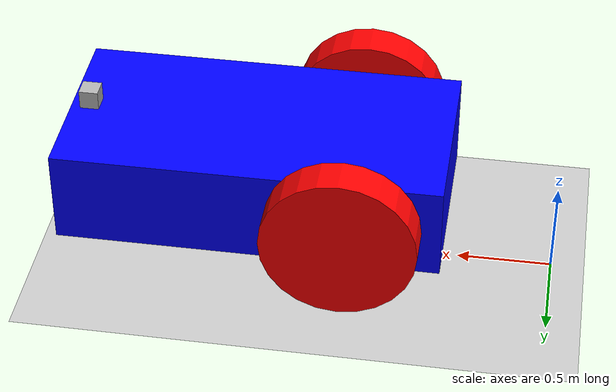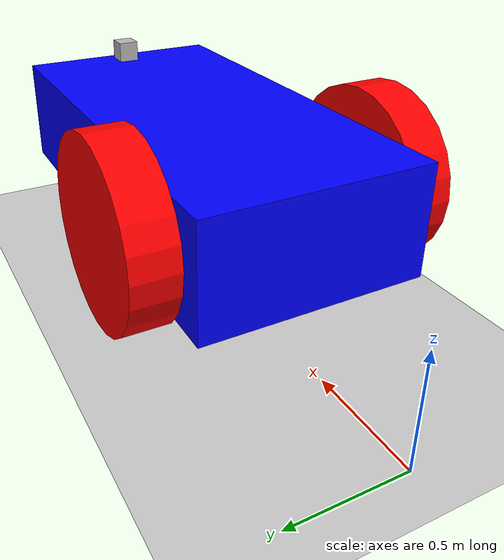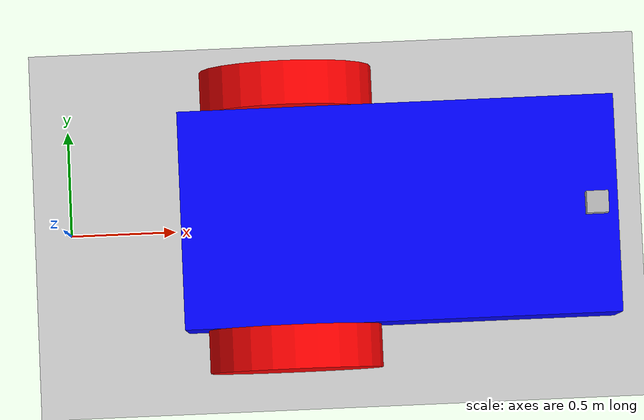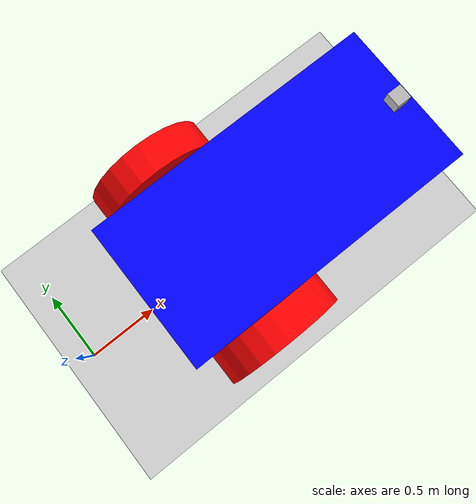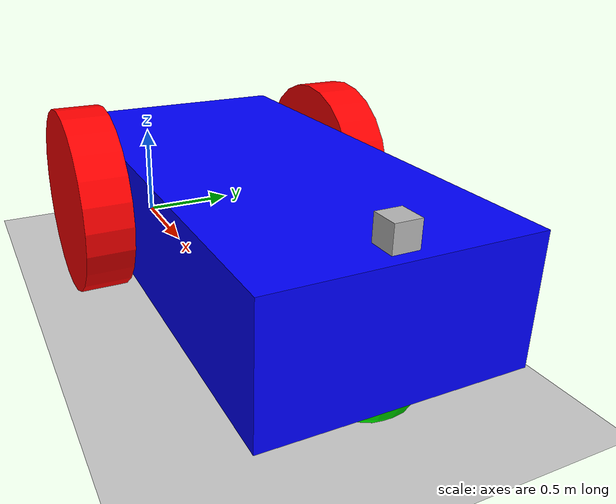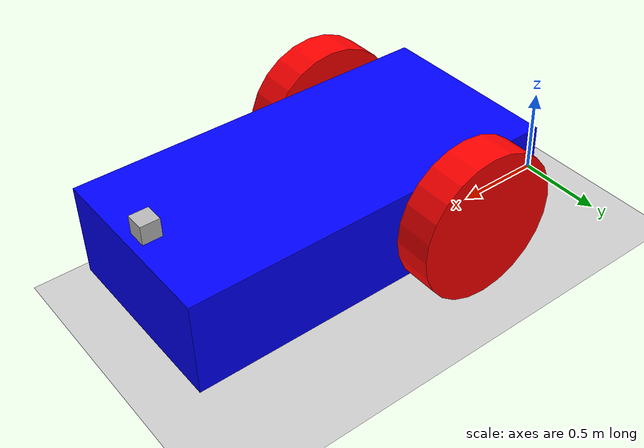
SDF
<?xml version="1.0" ?>
<sdf version="1.8">
    <world name="car_world">
        <physics name="1ms" type="ignored">
            <max_step_size>0.001</max_step_size>
            <real_time_factor>1.0</real_time_factor>
        </physics>
        <plugin
            filename="libignition-gazebo-physics-system.so"
            name="ignition::gazebo::systems::Physics">
        </plugin>
        <plugin
            filename="libignition-gazebo-user-commands-system.so"
            name="ignition::gazebo::systems::UserCommands">
        </plugin>
        <plugin
            filename="libignition-gazebo-scene-broadcaster-system.so"
            name="ignition::gazebo::systems::SceneBroadcaster">
        </plugin>
        <plugin
          filename="ignition-gazebo-sensors-system"
          name="ignition::gazebo::systems::Sensors">
          <render_engine>ogre</render_engine>
        </plugin>
        <plugin filename="libignition-gazebo-pose-publisher-system.so"
          name="ignition::gazebo::systems::PosePublisher">
          <publish_link_pose>true</publish_link_pose>
          <publish_sensor_pose>true</publish_sensor_pose>
          <publish_collision_pose>false</publish_collision_pose>
          <publish_visual_pose>false</publish_visual_pose>
          <publish_nested_model_pose>true</publish_nested_model_pose>
        </plugin>

        <light type="directional" name="sun">
            <cast_shadows>true</cast_shadows>
            <pose>0 0 10 0 0 0</pose>
            <diffuse>0.8 0.8 0.8 1</diffuse>
            <specular>0.2 0.2 0.2 1</specular>
            <attenuation>
                <range>1000</range>
                <constant>0.9</constant>
                <linear>0.01</linear>
                <quadratic>0.001</quadratic>
            </attenuation>
            <direction>-0.5 0.1 -0.9</direction>
        </light>

        <model name="ground_plane">
            <static>true</static>
            <link name="link">
                <collision name="collision">
                <geometry>
                    <plane>
                    <normal>0 0 1</normal>
                    </plane>
                </geometry>
                </collision>
                <visual name="visual">
                <geometry>
                    <plane>
                    <normal>0 0 1</normal>
                    <size>1000 1000</size>
                    </plane>
                </geometry>
                <material>
                    <ambient>0.8 0.8 0.8 1</ambient>
                    <diffuse>0.8 0.8 0.8 1</diffuse>
                    <specular>0.8 0.8 0.8 1</specular>
                </material>
                </visual>
            </link>
        </model>

        <model name="simple_car" canonical_link="chassis">
            <pose>1.06117 0 0.141547 0 -0 0</pose>
            <link name="chassis">
                <pose relative_to="__model__">0.5 0 0.4 0 0 0</pose>
                <inertial> <!--inertial properties of the link mass, inertia matix-->
                    <mass>1.14395</mass>
                    <inertia>
                        <ixx>0.095329</ixx>
                        <ixy>0</ixy>
                        <ixz>0</ixz>
                        <iyy>0.381317</iyy>
                        <iyz>0</iyz>
                        <izz>0.476646</izz>
                    </inertia>
                </inertial>
                <visual name='visual'>
                    <geometry>
                        <box>
                            <size>2.0 1.0 0.5</size>
                        </box>
                    </geometry>
                    <material>
                        <ambient>0.0 0.0 1.0 1</ambient>
                        <diffuse>0.0 0.0 1.0 1</diffuse>
                        <specular>0.0 0.0 1.0 1</specular>
                    </material>
                </visual>
                <collision name='collision'>
                    <geometry>
                        <box>
                            <size>2.0 1.0 0.5</size>
                        </box>
                    </geometry>
                </collision>
            </link>
            <joint name='camera_joint' type='fixed'>
                <pose relative_to='camera_link'/>
                <parent>chassis</parent>
                <child>camera_link</child>
            </joint>
            <link name="camera_link">
                <pose relative_to="chassis">0.9 0 0.30 0 0 0</pose>
                <inertial>
                  <mass>0.1</mass>
                  <inertia>
                    <ixx>0.000166667</ixx>
                    <iyy>0.000166667</iyy>
                    <izz>0.000166667</izz>
                  </inertia>
                </inertial>
                <collision name="collision">
                  <geometry>
                    <box>
                      <size>0.1 0.1 0.1</size>
                    </box>
                  </geometry>
                </collision>
                <visual name="visual">
                  <geometry>
                    <box>
                      <size>0.1 0.1 0.1</size>
                    </box>
                  </geometry>
                </visual>
                <sensor name="camera" type="camera">
                  <camera>
                    <horizontal_fov>1.047</horizontal_fov>
                    <image>
                      <width>320</width>
                      <height>240</height>
                    </image>
                    <clip>
                      <near>0.1</near>
                      <far>100</far>
                    </clip>
                  </camera>
                  <always_on>1</always_on>
                  <update_rate>30</update_rate>
                  <visualize>true</visualize>
                  <topic>camera</topic>
                </sensor>
            </link>
            <link name='left_wheel'>
                <pose relative_to="chassis">-0.5 0.6 0 -1.5707 0 0</pose>
                <inertial>
                    <mass>1</mass>
                    <inertia>
                        <ixx>0.043333</ixx>
                        <ixy>0</ixy>
                        <ixz>0</ixz>
                        <iyy>0.043333</iyy>
                        <iyz>0</iyz>
                        <izz>0.08</izz>
                    </inertia>
                </inertial>
                <visual name='visual'>
                    <geometry>
                        <cylinder>
                            <radius>0.4</radius>
                            <length>0.2</length>
                        </cylinder>
                    </geometry>
                    <material>
                        <ambient>1.0 0.0 0.0 1</ambient>
                        <diffuse>1.0 0.0 0.0 1</diffuse>
                        <specular>1.0 0.0 0.0 1</specular>
                    </material>
                </visual>
                <collision name='collision'>
                    <geometry>
                        <cylinder>
                            <radius>0.4</radius>
                            <length>0.2</length>
                        </cylinder>
                    </geometry>
                </collision>
            </link>
            <link name='right_wheel'>
                <pose relative_to="chassis">-0.5 -0.6 0 -1.5707 0 0</pose> <!--angles are in radian-->
                <inertial>
                    <mass>1</mass>
                    <inertia>
                        <ixx>0.043333</ixx>
                        <ixy>0</ixy>
                        <ixz>0</ixz>
                        <iyy>0.043333</iyy>
                        <iyz>0</iyz>
                        <izz>0.08</izz>
                    </inertia>
                </inertial>
                <visual name='visual'>
                    <geometry>
                        <cylinder>
                            <radius>0.4</radius>
                            <length>0.2</length>
                        </cylinder>
                    </geometry>
                    <material>
                        <ambient>1.0 0.0 0.0 1</ambient>
                        <diffuse>1.0 0.0 0.0 1</diffuse>
                        <specular>1.0 0.0 0.0 1</specular>
                    </material>
                </visual>
                <collision name='collision'>
                    <geometry>
                        <cylinder>
                            <radius>0.4</radius>
                            <length>0.2</length>
                        </cylinder>
                    </geometry>
                </collision>
            </link>
            <frame name="caster_frame" attached_to='chassis'>
                <pose>0.8 0 -0.2 0 0 0</pose>
            </frame>
            <link name='caster'>
                <pose relative_to='caster_frame'/>
                <inertial>
                    <mass>1</mass>
                    <inertia>
                        <ixx>0.016</ixx>
                        <ixy>0</ixy>
                        <ixz>0</ixz>
                        <iyy>0.016</iyy>
                        <iyz>0</iyz>
                        <izz>0.016</izz>
                    </inertia>
                </inertial>
                <visual name='visual'>
                    <geometry>
                        <sphere>
                            <radius>0.2</radius>
                        </sphere>
                    </geometry>
                    <material>
                        <ambient>0.0 1 0.0 1</ambient>
                        <diffuse>0.0 1 0.0 1</diffuse>
                        <specular>0.0 1 0.0 1</specular>
                    </material>
                </visual>
                <collision name='collision'>
                    <geometry>
                        <sphere>
                            <radius>0.2</radius>
                        </sphere>
                    </geometry>
                </collision>
            </link>
            <joint name='left_wheel_joint' type='revolute'>
                <pose relative_to='left_wheel'/>
                <parent>chassis</parent>
                <child>left_wheel</child>
                <axis>
                    <xyz expressed_in='__model__'>0 1 0</xyz> <!--can be defined as any frame or even arbitrary frames-->
                    <limit>
                        <lower>-1.79769e+308</lower>    <!--negative infinity-->
                        <upper>1.79769e+308</upper>     <!--positive infinity-->
                    </limit>
                </axis>
            </joint>
            <joint name='right_wheel_joint' type='revolute'>
                <pose relative_to='right_wheel'/>
                <parent>chassis</parent>
                <child>right_wheel</child>
                <axis>
                    <xyz expressed_in='__model__'>0 1 0</xyz>
                    <limit>
                        <lower>-1.79769e+308</lower>    <!--negative infinity-->
                        <upper>1.79769e+308</upper>     <!--positive infinity-->
                    </limit>
                </axis>
            </joint>
            <joint name='caster_wheel' type='ball'>
                <parent>chassis</parent>
                <child>caster</child>
            </joint>

            <!-- PLUGINS -->
            <plugin
                filename="libignition-gazebo-diff-drive-system.so"
                name="ignition::gazebo::systems::DiffDrive">
                <left_joint>left_wheel_joint</left_joint>
                <right_joint>right_wheel_joint</right_joint>
                <wheel_separation>1.2</wheel_separation>
                <wheel_radius>0.4</wheel_radius>
                <odom_publish_frequency>1</odom_publish_frequency>
                <topic>cmd_vel</topic>
            </plugin>
        </model>
    </world>
</sdf>
